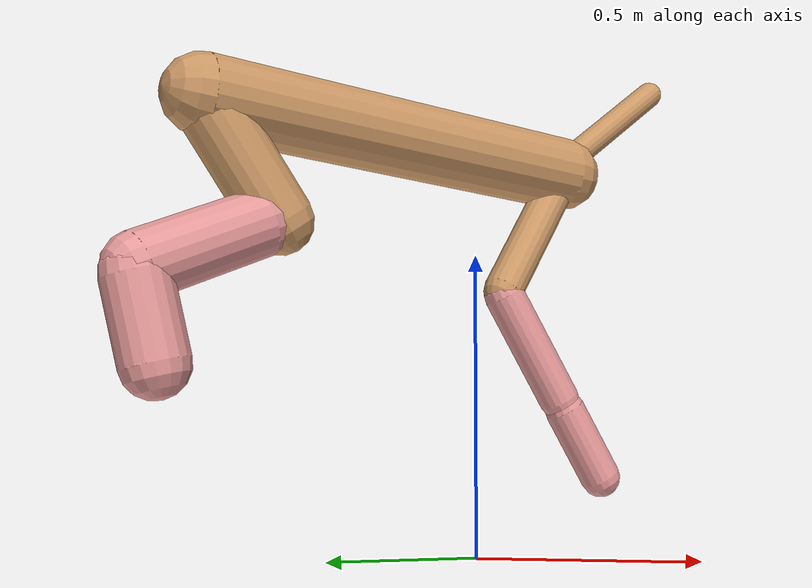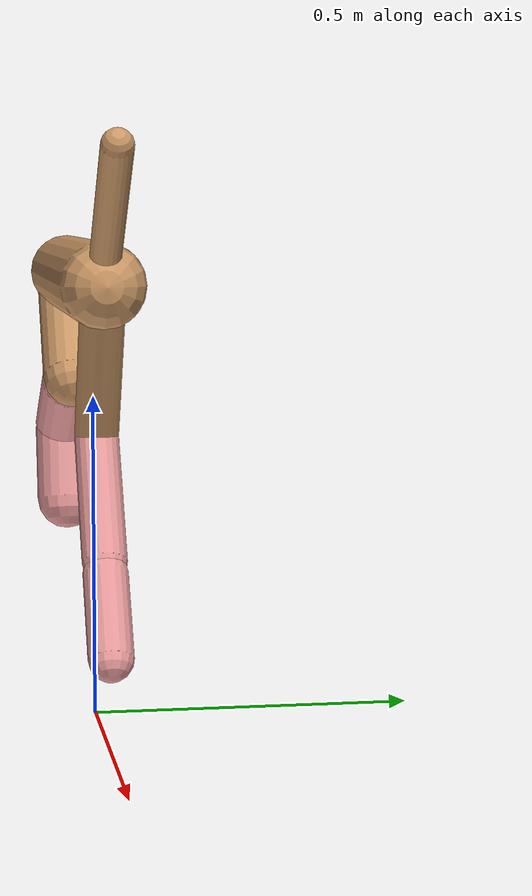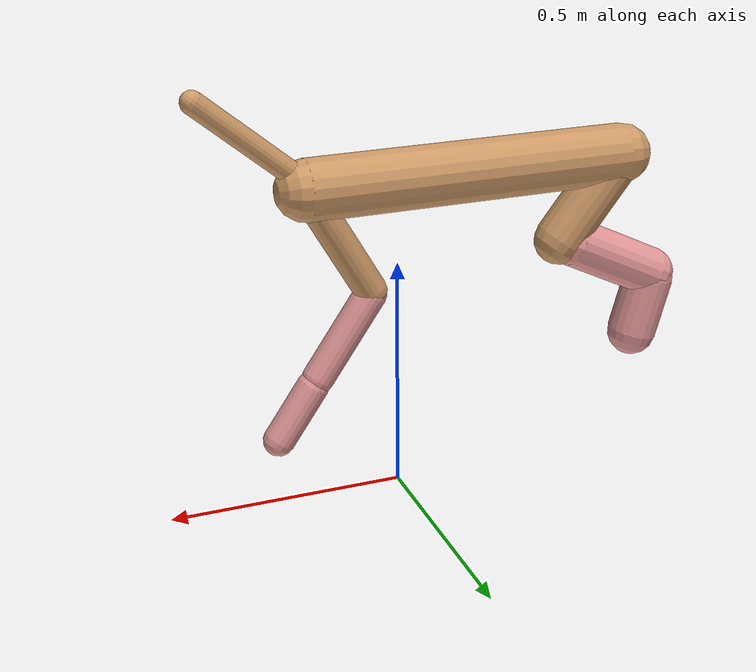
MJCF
<mujoco model="cheetah">
  <compiler angle="radian" coordinate="local" inertiafromgeom="true" settotalmass="14" />
  <default>
    <joint armature=".1" damping=".01" limited="true" solimplimit="0 .8 .03" solreflimit=".02 1" stiffness="8" />
    <geom conaffinity="0" condim="3" contype="1" friction="0.8 .1 .1" rgba="0.8 0.6 .4 1" solimp="0.0 0.8 0.01" solref="0.02 1" />
    <motor ctrllimited="true" ctrlrange="-1 1" />
  </default>
  <size nstack="300000" nuser_geom="1" />
  <option gravity="0 0 -9.81" timestep="0.01" />
  <worldbody>
    <body name="torso" pos="0.0 0.0 0.6779891096956129">
      <joint armature="0" axis="1 0 0" damping="0" limited="false" name="ignorex" pos="0 0 0" stiffness="0" type="slide" />
      <joint armature="0" axis="0 0 1" damping="0" limited="false" name="ignorez" pos="0 0 0" stiffness="0" type="slide" />
      <joint armature="0" axis="0 1 0" damping="0" limited="false" name="ignorey" pos="0 0 0" stiffness="0" type="hinge" />
      <geom fromto="-0.5 0.0 0.0 0.19050139132837335 0.0 0.0" name="torso" size="0.06369353952574675" type="capsule" />
      <geom axisangle="0 1 0 .87" name="head" pos="0.29050139132837327 0.0 0.1" size="0.023681662762940835 0.15" type="capsule" />

      <body name="bthigh" pos="-.5 0 0">
        <joint axis="0 1 0" damping="6" name="bthigh" pos="0 0 0" range="-.52 1.05" stiffness="240" type="hinge" />
        <geom axisangle="0 1 0 -3.8" name="bthigh" pos="0.0734775819030384 0.0 -0.0955208564739499" size="0.053125169941818096 0.10149999999999999" type="capsule" />
        <body name="bshin" pos="0.10695516380607678 0.0 -0.18104171294789978">
          <joint axis="0 1 0" damping="4.5" name="bshin" pos="0 0 0" range="-.785 .785" stiffness="180" type="hinge" />
          <geom axisangle="0 1 0 -2.03" name="bshin" pos="-0.0997507764050038 0.0 -0.0498753882025019" rgba="0.9 0.6 0.6 1" size="0.053125169941818096 0.105" type="capsule" />
          <body name="bfoot" pos="-0.1995015528100076 0.0 -0.0997507764050038">
            <joint axis="0 1 0" damping="3" name="bfoot" pos="0 0 0" range="-.4 .785" stiffness="120" type="hinge" />
            <geom axisangle="0 1 0 -.27" name="bfoot" pos="0.021667753813597694 0.0 -0.07005907066396588" rgba="0.9 0.6 0.6 1" size="0.053125169941818096 0.0658" type="capsule" />
            <inertial mass="10" />
          </body>
        </body>
      </body>
      <body name="fthigh" pos="0.1905013913283733 0.0 0.0">
        <joint axis="0 1 0" damping="4.5" name="fthigh" pos="0 0 0" range="-1.5 0.8" stiffness="180" type="hinge" />
        <geom axisangle="0 1 0 .52" name="fthigh" pos="-0.0684570539406285 0.0 -0.11735494961250598" size="0.03406756214238632 0.12993781547020558" type="capsule" />
        <body name="fshin" pos="-0.136914107881257 0.0 -0.23470989922501195">
          <joint axis="0 1 0" damping="3" name="fshin" pos="0 0 0" range="-1.2 1.1" stiffness="120" type="hinge" />
          <geom axisangle="0 1 0 -.6" name="fshin" pos="0.06357108802759222 0.0 -0.08802150649974307" rgba="0.9 0.6 0.6 1" size="0.03406756214238632 0.10355946195369767" type="capsule" />
          <body name="ffoot" pos="0.12714217605518444 0.0 -0.17604301299948613">
            <joint axis="0 1 0" damping="1.5" name="ffoot" pos="0 0 0" range="-3.1 -0.3" stiffness="60" type="hinge" />
            <geom axisangle="0 1 0 -.6" name="ffoot" pos="0.04412847393132153 0.0 -0.06864429278205572" rgba="0.9 0.6 0.6 1" size="0.03406756214238632 0.06838832393168714" type="capsule" />
            <inertial mass="10" />
          </body>
        </body>
      </body>
    </body>
  </worldbody>
  <actuator>
    <motor gear="120" joint="bthigh" name="bthigh" />
    <motor gear="90" joint="bshin" name="bshin" />
    <motor gear="60" joint="bfoot" name="bfoot" />
    <motor gear="120" joint="fthigh" name="fthigh" />
    <motor gear="60" joint="fshin" name="fshin" />
    <motor gear="30" joint="ffoot" name="ffoot" />
  </actuator>
</mujoco>
